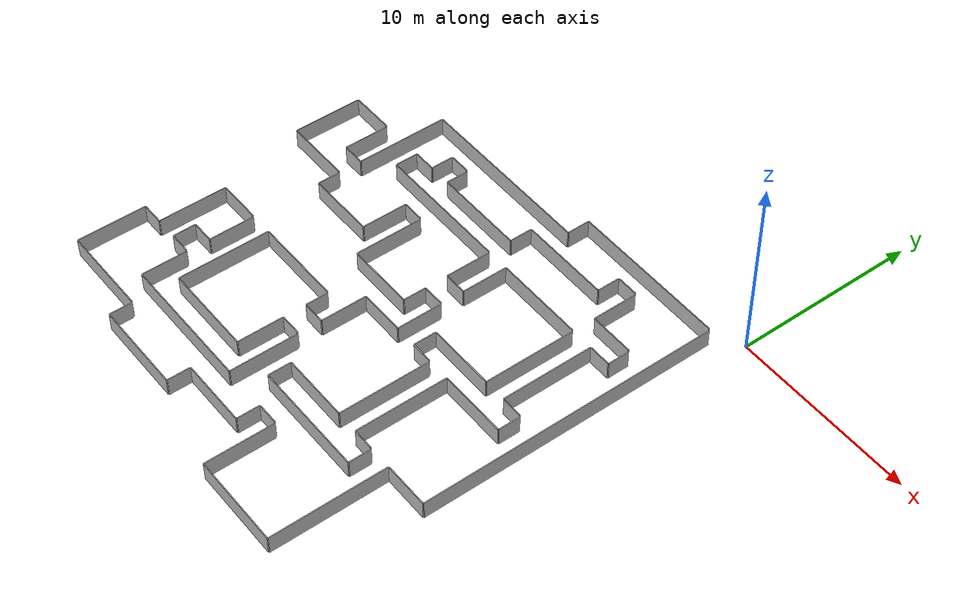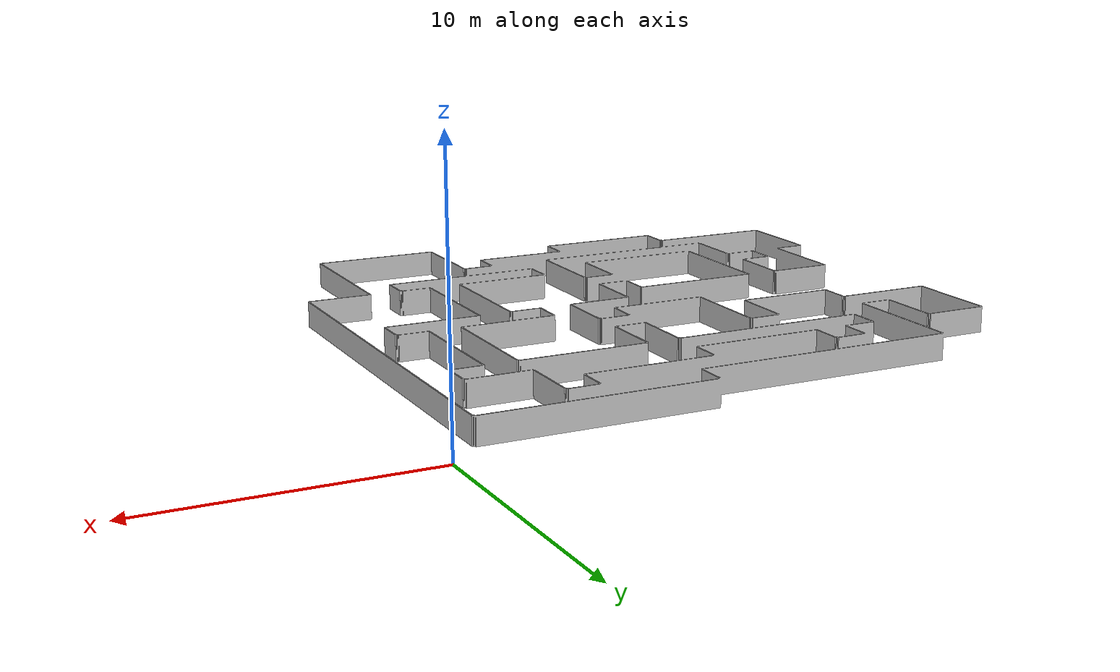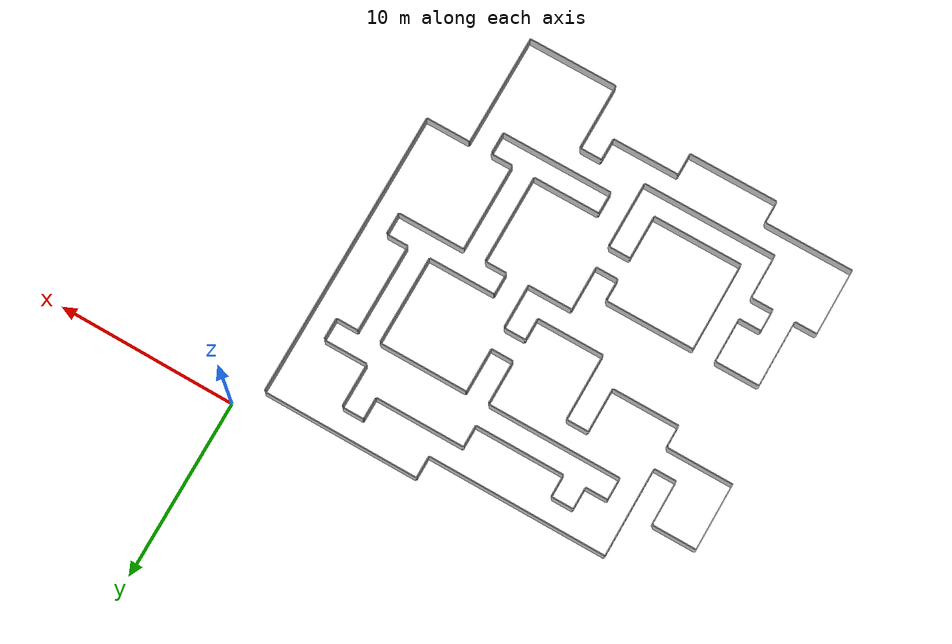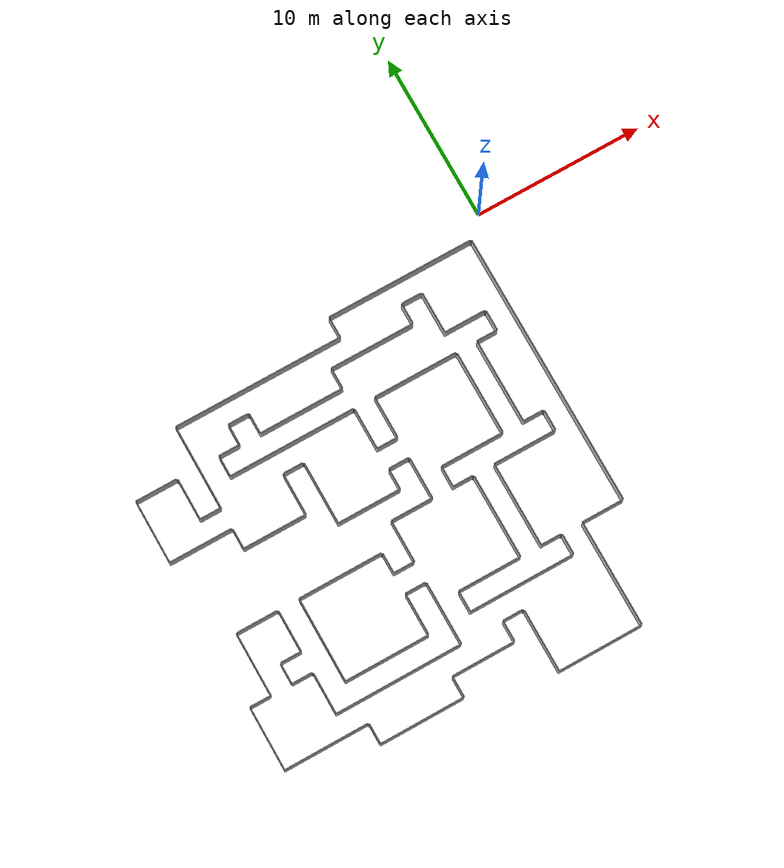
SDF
<?xml version="1.0" ?>
<sdf version="1.8">
  <model name="ground_plane">
    <pose>0 0 0 0 0 0</pose>
    <link name="link">
      <inertial>
        <mass>100</mass>
        <inertia>
          <ixx>0.1</ixx>
          <ixy>0.0</ixy>
          <ixz>0.0</ixz>
          <iyy>0.1</iyy>
          <iyz>0.0</iyz>
          <izz>0.1</izz>
        </inertia>
      </inertial>

      <!-- Collision Properties -->
      <collision name="collision">
        <pose>0 0 0 0 0 -1.5708</pose>
        <geometry>
          <mesh>
            <uri>boundary_map.stl</uri>
          </mesh>
        </geometry>
        <surface>
          <bounce>
            <restitution_coefficient>0.8</restitution_coefficient>  <!-- Bounciness (0-1) -->
            <threshold>0.5</threshold>  <!-- Min. velocity for bounce (m/s) -->
          </bounce>
          <friction>
            <ode>
              <mu>0.5</mu>              <!-- Friction coefficient -->
              <mu2>0.5</mu2>
              <fdir1>0 0 0</fdir1>
              <slip1>0.0</slip1>
              <slip2>0.0</slip2>
            </ode>
          </friction>
        </surface>
      </collision>

      <visual name="visual">
        <pose>0 0 0 0 0 -1.5708</pose>
        <geometry>
          <mesh>
            <uri>boundary_map.stl</uri>
          </mesh>
        </geometry>
      </visual>
    </link>
    <static>true</static>
  </model>
</sdf>
